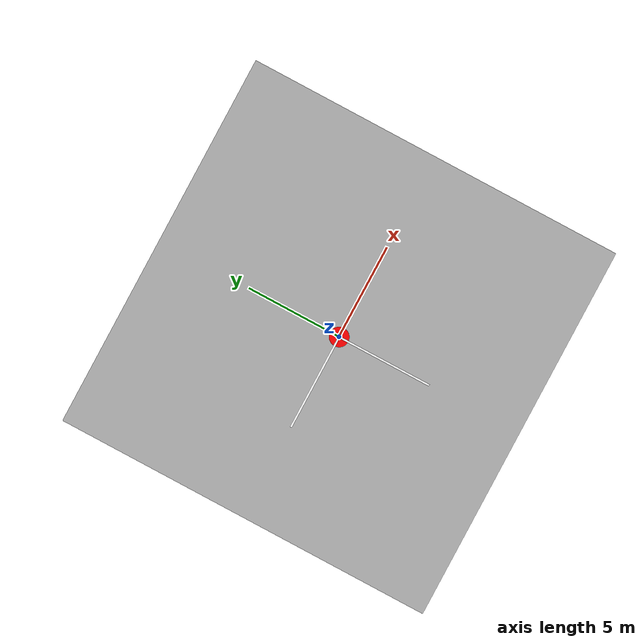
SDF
<?xml version="1.7"?>
<sdf version="1.7">
  <world name="default">
    <physics type="bullet">
      <real_time_update_rate>2000</real_time_update_rate>
    </physics>
    <gravity>0 0 -9.81</gravity>
    <include>
      <uri>model://ground_plane_custom</uri>
    </include>
    <include>
      <uri>model://sun</uri>
    </include>
  </world>
</sdf>

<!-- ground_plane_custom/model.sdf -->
<sdf version="1.7">
  <model name="ground_plane_custom">
    <static>true</static>
    <link name="ground_link">
      <!-- 地面本体（色付き） -->
      <visual name="ground_visual">
        <geometry>
          <box>
            <size>20 20 0.01</size>
          </box>
        </geometry>
        <material>
          <ambient>0.7 0.7 0.7 1</ambient> <!-- 明るいグレー -->
          <diffuse>0.7 0.7 0.7 1</diffuse>
        </material>
        <pose>0 0 -0.005 0 0 0</pose>
      </visual>
      <collision name="ground_collision">
        <geometry>
          <box>
            <size>20 20 0.01</size>
          </box>
        </geometry>
        <pose>0 0 -0.005 0 0 0</pose>
      </collision>
      <!-- 地面中央の赤い円形マーカー -->
      <visual name="center_marker">
        <geometry>
          <cylinder>
            <radius>0.5</radius>
            <length>0.02</length>
          </cylinder>
        </geometry>
        <material>
          <ambient>1 0 0 1</ambient>
          <diffuse>1 0 0 1</diffuse>
        </material>
        <pose>0 0 0.01 0 0 0</pose>
      </visual>
      <!-- 地面中央の白い十字（X軸） -->
      <visual name="cross_x_axis">
        <geometry>
          <box>
            <size>10 0.1 0.02</size>
          </box>
        </geometry>
        <material>
          <ambient>1 1 1 1</ambient>
          <diffuse>1 1 1 1</diffuse>
        </material>
        <pose>0 0 0.011 0 0 0</pose>
      </visual>
      <!-- 地面中央の白い十字（Y軸） -->
      <visual name="cross_y_axis">
        <geometry>
          <box>
            <size>0.1 10 0.02</size>
          </box>
        </geometry>
        <material>
          <ambient>1 1 1 1</ambient>
          <diffuse>1 1 1 1</diffuse>
        </material>
        <pose>0 0 0.012 0 0 0</pose>
      </visual>
    </link>
  </model>
</sdf>
